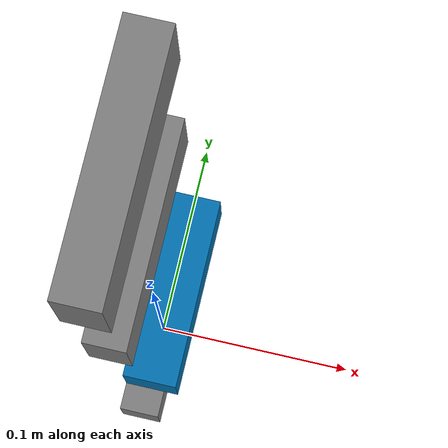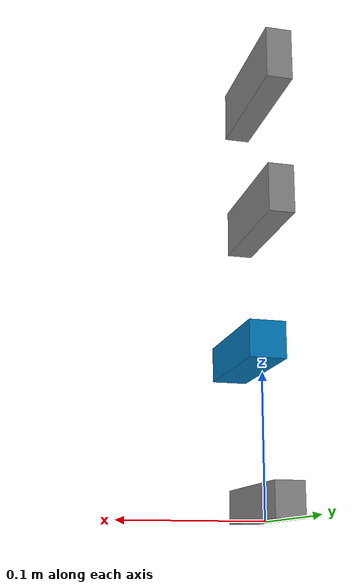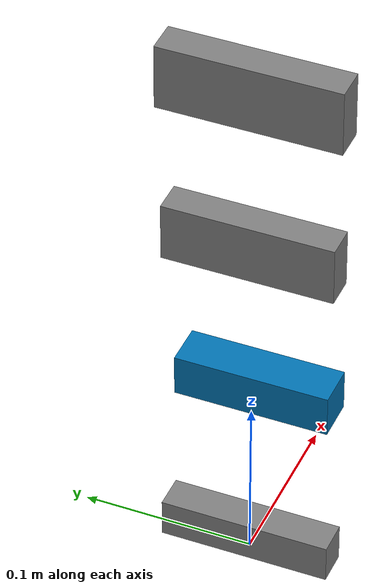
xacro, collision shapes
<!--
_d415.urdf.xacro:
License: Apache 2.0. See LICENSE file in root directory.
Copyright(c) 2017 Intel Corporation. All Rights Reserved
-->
<?xml version="1.0"?>
<robot name="realsense2_camera" xmlns:xacro="http://ros.org/wiki/xacro">
  <xacro:include filename="../urdf/_d415.urdf.xacro" />
  <xacro:include filename="../urdf/_d435.urdf.xacro" />
  <xacro:include filename="../urdf/_r410.urdf.xacro" />
  <xacro:include filename="../urdf/_r430.urdf.xacro" />

  <xacro:arg name="use_nominal_extrinsics" default="True" />
  <link name="base_link" />
  <xacro:sensor_d415 parent="base_link" name="d415">
    <origin xyz="0 0 0" rpy="0 0 0"/>
  </xacro:sensor_d415>
  <xacro:sensor_d435 parent="base_link" name="d435">
    <origin xyz="0 0 0.1" rpy="0 0 0"/>
  </xacro:sensor_d435>
  <xacro:sensor_r410 parent="base_link" name="r410">
    <origin xyz="0 0 0.2" rpy="0 0 0"/>
  </xacro:sensor_r410>
  <xacro:sensor_r430 parent="base_link" name="r430">
    <origin xyz="0 0 0.3" rpy="0 0 0"/>
  </xacro:sensor_r430>
</robot>

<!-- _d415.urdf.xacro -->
<robot name="sensor_d415" xmlns:xacro="http://ros.org/wiki/xacro">
  <!-- Includes -->
  <xacro:include filename="$(find realsense2_description)/urdf/_materials.urdf.xacro" />
  <xacro:include filename="$(find realsense2_description)/urdf/_usb_plug.urdf.xacro" />

  <xacro:macro name="sensor_d415" params="parent *origin  name:=camera  use_nominal_extrinsics:=false add_plug:=false use_mesh:=true">
    <xacro:property name="M_PI" value="3.1415926535897931" />

    <!-- The following values are approximate, and the camera node
     publishing TF values with actual calibrated camera extrinsic values -->
    <xacro:property name="d415_cam_depth_to_infra1_offset" value="0.0"/>
    <xacro:property name="d415_cam_depth_to_infra2_offset" value="-0.055"/>
    <xacro:property name="d415_cam_depth_to_color_offset" value="0.015"/>

    <!-- The following values model the aluminum peripherial case for the
  	d415 camera, with the camera joint represented by the actual
  	peripherial camera tripod mount -->
    <xacro:property name="d415_cam_width" value="0.099"/>
    <xacro:property name="d415_cam_height" value="0.023"/>
    <xacro:property name="d415_cam_depth" value="0.02005"/>
    <xacro:property name="d415_cam_mount_from_center_offset" value="0.00987"/>

    <!-- The following offset is relative the the physical d415 camera peripherial
  	camera tripod mount -->
    <xacro:property name="d415_cam_depth_px" value="${d415_cam_mount_from_center_offset}"/>
    <xacro:property name="d415_cam_depth_py" value="0.020"/>
    <xacro:property name="d415_cam_depth_pz" value="${d415_cam_height/2}"/>

    <!-- camera body, with origin at bottom screw mount -->
    <joint name="${name}_joint" type="fixed">
      <xacro:insert_block name="origin" />
      <parent link="${parent}"/>
      <child link="${name}_bottom_screw_frame" />
    </joint>

    <link name="${name}_bottom_screw_frame"/>

    <joint name="${name}_link_joint" type="fixed">
      <origin xyz="0 ${d415_cam_depth_py} ${d415_cam_depth_pz}" rpy="0 0 0"/>
      <parent link="${name}_bottom_screw_frame"/>
      <child link="${name}_link" />
    </joint>

    <link name="${name}_link">
      <visual>
        <xacro:if value="${use_mesh}">
          <origin xyz="${d415_cam_mount_from_center_offset} ${-d415_cam_depth_py} 0" rpy="${M_PI/2} 0 ${M_PI/2}"/>
          <geometry>
            <mesh filename="package://realsense2_description/meshes/d415.stl" />
          </geometry>
          <material name="aluminum"/>
        </xacro:if>
        <xacro:unless value="${use_mesh}">
          <origin xyz="0 ${-d415_cam_depth_py} 0" rpy="0 0 0"/>
          <geometry>
            <box size="${d415_cam_depth} ${d415_cam_width} ${d415_cam_height}"/>
          </geometry>
        </xacro:unless>
      </visual>
      <collision>
        <origin xyz="0 ${-d415_cam_depth_py} 0" rpy="0 0 0"/>
        <geometry>
        <box size="${d415_cam_depth} ${d415_cam_width} ${d415_cam_height}"/>
        </geometry>
      </collision>
      <inertial>
        <mass value="0.072" />
        <!-- The following are not reliable values, and should not be used for modeling -->
        <origin xyz="0 0 0" />
        <inertia ixx="0.003881243" ixy="0.0" ixz="0.0" iyy="0.000498940" iyz="0.0" izz="0.003879257" />
      </inertial>
    </link>

    <!-- Use the nominal extrinsics between camera frames if the calibrated extrinsics aren't being published. e.g. running the device in simulation  -->
    <xacro:if value="${use_nominal_extrinsics}">
      <!-- camera depth joints and links -->
      <joint name="${name}_depth_joint" type="fixed">
        <origin xyz="0 0 0" rpy="0 0 0"/>
        <parent link="${name}_link"/>
        <child link="${name}_depth_frame" />
      </joint>
      <link name="${name}_depth_frame"/>

      <joint name="${name}_depth_optical_joint" type="fixed">
        <origin xyz="0 0 0" rpy="${-M_PI/2} 0 ${-M_PI/2}" />
        <parent link="${name}_depth_frame" />
        <child link="${name}_depth_optical_frame" />
      </joint>
      <link name="${name}_depth_optical_frame"/>

      <!-- camera left IR joints and links -->
      <joint name="${name}_infra1_joint" type="fixed">
        <origin xyz="0 ${d415_cam_depth_to_infra1_offset} 0" rpy="0 0 0" />
        <parent link="${name}_link" />
        <child link="${name}_infra1_frame" />
      </joint>
      <link name="${name}_infra1_frame"/>

      <joint name="${name}_infra1_optical_joint" type="fixed">
        <origin xyz="0 0 0" rpy="${-M_PI/2} 0 ${-M_PI/2}" />
        <parent link="${name}_infra1_frame" />
        <child link="${name}_infra1_optical_frame" />
      </joint>
      <link name="${name}_infra1_optical_frame"/>

      <!-- camera right IR joints and links -->
      <joint name="${name}_infra2_joint" type="fixed">
        <origin xyz="0 ${d415_cam_depth_to_infra2_offset} 0" rpy="0 0 0" />
        <parent link="${name}_link" />
        <child link="${name}_infra2_frame" />
      </joint>
      <link name="${name}_infra2_frame"/>

      <joint name="${name}_infra2_optical_joint" type="fixed">
        <origin xyz="0 0 0" rpy="${-M_PI/2} 0 ${-M_PI/2}" />
        <parent link="${name}_infra2_frame" />
        <child link="${name}_infra2_optical_frame" />
      </joint>
      <link name="${name}_infra2_optical_frame"/>

      <!-- camera color joints and links -->
      <joint name="${name}_color_joint" type="fixed">
        <origin xyz="0 ${d415_cam_depth_to_color_offset} 0" rpy="0 0 0" />
        <parent link="${name}_link" />
        <child link="${name}_color_frame" />
      </joint>
      <link name="${name}_color_frame"/>

      <joint name="${name}_color_optical_joint" type="fixed">
        <origin xyz="0 0 0" rpy="${-M_PI/2} 0 ${-M_PI/2}" />
        <parent link="${name}_color_frame" />
        <child link="${name}_color_optical_frame" />
      </joint>
      <link name="${name}_color_optical_frame"/>
    </xacro:if>

    <xacro:if value="${add_plug}">
      <xacro:usb_plug parent="${name}_link" name="${name}_usb_plug">
        <origin xyz="${d415_cam_mount_from_center_offset - 0.01587} ${-d415_cam_depth_py - 0.0358} 0" rpy="0 0 0"/>
      </xacro:usb_plug>
    </xacro:if>
  </xacro:macro>
</robot>

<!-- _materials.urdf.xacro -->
<robot>
  <material name="aluminum">
    <color rgba="0.5 0.5 0.5 1"/>
  </material>
  <material name="plastic">
    <color rgba="0.1 0.1 0.1 1"/>
  </material>
</robot>

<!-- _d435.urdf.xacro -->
<robot name="sensor_d435" xmlns:xacro="http://ros.org/wiki/xacro">
  <!-- Includes -->
  <xacro:include filename="$(find realsense2_description)/urdf/_materials.urdf.xacro" />
  <xacro:include filename="$(find realsense2_description)/urdf/_usb_plug.urdf.xacro" />

  <xacro:macro name="sensor_d435" params="parent *origin name:=camera use_nominal_extrinsics:=false add_plug:=false use_mesh:=true">
    <xacro:property name="M_PI" value="3.1415926535897931" />

    <!-- The following values are approximate, and the camera node
     publishing TF values with actual calibrated camera extrinsic values -->
    <xacro:property name="d435_cam_depth_to_infra1_offset" value="0.0"/>
    <xacro:property name="d435_cam_depth_to_infra2_offset" value="-0.050"/>
    <xacro:property name="d435_cam_depth_to_color_offset" value="0.015"/>

    <!-- The following values model the aluminum peripherial case for the
  	D435 camera, with the camera joint represented by the actual
  	peripherial camera tripod mount -->
    <xacro:property name="d435_cam_width" value="0.090"/>
    <xacro:property name="d435_cam_height" value="0.025"/>
    <xacro:property name="d435_cam_depth" value="0.02505"/>
    <xacro:property name="d435_cam_mount_from_center_offset" value="0.0149"/>
    <!-- glass cover is 0.1 mm inwards from front aluminium plate -->
    <xacro:property name="d435_glass_to_front" value="0.1e-3"/>
    <!-- see datasheet Revision 007, Fig. 4-4 page 65 -->
    <xacro:property name="d435_zero_depth_to_glass" value="4.2e-3"/>
    <!-- convenience precomputation to avoid clutter-->
    <xacro:property name="d435_mesh_x_offset" value="${d435_cam_mount_from_center_offset-d435_glass_to_front-d435_zero_depth_to_glass}"/>

    <!-- The following offset is relative the the physical D435 camera peripherial
  	camera tripod mount -->
    <xacro:property name="d435_cam_depth_px" value="${d435_cam_mount_from_center_offset}"/>
    <xacro:property name="d435_cam_depth_py" value="0.0175"/>
    <xacro:property name="d435_cam_depth_pz" value="${d435_cam_height/2}"/>

    <!-- camera body, with origin at bottom screw mount -->
    <joint name="${name}_joint" type="fixed">
      <xacro:insert_block name="origin" />
      <parent link="${parent}"/>
      <child link="${name}_bottom_screw_frame" />
    </joint>
    <link name="${name}_bottom_screw_frame"/>

    <joint name="${name}_link_joint" type="fixed">
      <origin xyz="${d435_mesh_x_offset} ${d435_cam_depth_py} ${d435_cam_depth_pz}" rpy="0 0 0"/>
      <parent link="${name}_bottom_screw_frame"/>
      <child link="${name}_link" />
    </joint>

    <link name="${name}_link">
      <visual>
        <xacro:if value="${use_mesh}">
          <!-- the mesh origin is at front plate in between the two infrared camera axes -->
          <origin xyz="${d435_zero_depth_to_glass + d435_glass_to_front} ${-d435_cam_depth_py} 0" rpy="${M_PI/2} 0 ${M_PI/2}"/>
          <geometry>
            <mesh filename="package://realsense2_description/meshes/d435.dae" />
          </geometry>
        </xacro:if>
        <xacro:unless value="${use_mesh}">
          <origin xyz="0 ${-d435_cam_depth_py} 0" rpy="0 0 0"/>
          <geometry>
            <box size="${d435_cam_depth} ${d435_cam_width} ${d435_cam_height}"/>
          </geometry>
          <material name="aluminum"/>
        </xacro:unless>
      </visual>
      <collision>
        <origin xyz="0 ${-d435_cam_depth_py} 0" rpy="0 0 0"/>
        <geometry>
          <box size="${d435_cam_depth} ${d435_cam_width} ${d435_cam_height}"/>
        </geometry>
      </collision>
      <inertial>
        <!-- The following are not reliable values, and should not be used for modeling -->
        <mass value="0.072" />
        <origin xyz="0 0 0" />
        <inertia ixx="0.003881243" ixy="0.0" ixz="0.0" iyy="0.000498940" iyz="0.0" izz="0.003879257" />
      </inertial>
    </link>

    <!-- Use the nominal extrinsics between camera frames if the calibrated extrinsics aren't being published. e.g. running the device in simulation  -->
    <xacro:if value="${use_nominal_extrinsics}">
      <!-- camera depth joints and links -->
      <joint name="${name}_depth_joint" type="fixed">
        <origin xyz="0 0 0" rpy="0 0 0"/>
        <parent link="${name}_link"/>
        <child link="${name}_depth_frame" />
      </joint>
      <link name="${name}_depth_frame"/>

      <joint name="${name}_depth_optical_joint" type="fixed">
        <origin xyz="0 0 0" rpy="${-M_PI/2} 0 ${-M_PI/2}" />
        <parent link="${name}_depth_frame" />
        <child link="${name}_depth_optical_frame" />
      </joint>
      <link name="${name}_depth_optical_frame"/>

      <!-- camera left IR joints and links -->
      <joint name="${name}_infra1_joint" type="fixed">
        <origin xyz="0 ${d435_cam_depth_to_infra1_offset} 0" rpy="0 0 0" />
        <parent link="${name}_link" />
        <child link="${name}_infra1_frame" />
      </joint>
      <link name="${name}_infra1_frame"/>

      <joint name="${name}_infra1_optical_joint" type="fixed">
        <origin xyz="0 0 0" rpy="${-M_PI/2} 0 ${-M_PI/2}" />
        <parent link="${name}_infra1_frame" />
        <child link="${name}_infra1_optical_frame" />
      </joint>
      <link name="${name}_infra1_optical_frame"/>

      <!-- camera right IR joints and links -->
      <joint name="${name}_infra2_joint" type="fixed">
        <origin xyz="0 ${d435_cam_depth_to_infra2_offset} 0" rpy="0 0 0" />
        <parent link="${name}_link" />
        <child link="${name}_infra2_frame" />
      </joint>
      <link name="${name}_infra2_frame"/>

      <joint name="${name}_infra2_optical_joint" type="fixed">
        <origin xyz="0 0 0" rpy="${-M_PI/2} 0 ${-M_PI/2}" />
        <parent link="${name}_infra2_frame" />
        <child link="${name}_infra2_optical_frame" />
      </joint>
      <link name="${name}_infra2_optical_frame"/>

      <!-- camera color joints and links -->
      <joint name="${name}_color_joint" type="fixed">
        <origin xyz="0 ${d435_cam_depth_to_color_offset} 0" rpy="0 0 0" />
        <parent link="${name}_link" />
        <child link="${name}_color_frame" />
      </joint>
      <link name="${name}_color_frame"/>

      <joint name="${name}_color_optical_joint" type="fixed">
        <origin xyz="0 0 0" rpy="${-M_PI/2} 0 ${-M_PI/2}" />
        <parent link="${name}_color_frame" />
        <child link="${name}_color_optical_frame" />
      </joint>
      <link name="${name}_color_optical_frame"/>
    </xacro:if>

    <xacro:if value="${add_plug}">
      <xacro:usb_plug parent="${name}_link" name="${name}_usb_plug">
        <origin xyz="${d435_cam_mount_from_center_offset - 0.02095} ${-d435_cam_depth_py - 0.0353} 0" rpy="0 0 0"/>
      </xacro:usb_plug>
    </xacro:if>
  </xacro:macro>
</robot>

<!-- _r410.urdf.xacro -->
<robot name="sensor_r410" xmlns:xacro="http://ros.org/wiki/xacro">
  <!-- Includes -->
  <xacro:include filename="$(find realsense2_description)/urdf/_materials.urdf.xacro" />

  <xacro:macro name="sensor_r410" params="parent *origin  name:=camera  use_nominal_extrinsics:=false">
    <xacro:property name="M_PI" value="3.1415926535897931" />

    <!-- The following values are approximate, and the camera node
     publishing TF values with actual calibrated camera extrinsic values -->
    <xacro:property name="r410_cam_depth_to_infra1_offset" value="-0.0275"/>
    <xacro:property name="r410_cam_depth_to_infra2_offset" value="0.0275"/>

    <!-- The following values model the aluminum peripherial case for the
      R410 camera, with the camera joint represented by the actual
      peripherial camera tripod mount -->
    <xacro:property name="r410_cam_width" value="0.099"/>
    <xacro:property name="r410_cam_height" value="0.035"/>
    <xacro:property name="r410_cam_depth" value="0.0185"/>
    <xacro:property name="r410_cam_mount_from_center_offset" value=".0375"/>

    <!-- The following offset is relative the the physical R410 camera peripherial
      camera tripod mount -->
    <xacro:property name="r410_cam_depth_px" value="0.00"/>
    <xacro:property name="r410_cam_depth_py" value="-0.0425"/>
    <xacro:property name="r410_cam_depth_pz" value="0.026"/>

    <!-- camera body, with origin at bottom screw mount -->
    <joint name="${name}_joint" type="fixed">
      <xacro:insert_block name="origin" />
      <parent link="${parent}"/>
      <child link="${name}_link" />
    </joint>

    <link name="${name}_link">
      <visual>
      <origin xyz="0 ${-r410_cam_mount_from_center_offset} ${r410_cam_height/2}" rpy="${M_PI/2} 0 ${M_PI/2}"/>
        <geometry>
          <box size="${r410_cam_width} ${r410_cam_height} ${r410_cam_depth}"/>
        </geometry>
        <material name="aluminum"/>
      </visual>
      <collision>
        <origin xyz="0.0 0.0 ${r410_cam_height/2}" rpy="0 0 0"/>
        <geometry>
        <box size="${r410_cam_depth} ${r410_cam_width} ${r410_cam_height}"/>
        </geometry>
      </collision>
      <inertial>
        <!-- The following are not reliable values, and should not be used for modeling -->
        <mass value="0.564" />
        <origin xyz="0 0 0" />
        <inertia ixx="0.003881243" ixy="0.0" ixz="0.0" iyy="0.000498940" iyz="0.0" izz="0.003879257" />
      </inertial>
    </link>

    <!-- Use the nominal extrinsics between camera frames if the calibrated extrinsics aren't being published. e.g. running the device in simulation  -->
    <xacro:if value="${use_nominal_extrinsics}">
      <!-- camera depth joints and links -->
      <joint name="${name}_depth_joint" type="fixed">
        <origin xyz="${r410_cam_depth_px} ${r410_cam_depth_py} ${r410_cam_depth_pz}" rpy="0 0 0"/>
        <parent link="${name}_link"/>
        <child link="${name}_depth_frame" />
      </joint>
      <link name="${name}_depth_frame"/>

      <joint name="${name}_depth_optical_joint" type="fixed">
        <origin xyz="0 0 0" rpy="${-M_PI/2} 0 ${-M_PI/2}" />
        <parent link="${name}_depth_frame" />
        <child link="${name}_depth_optical_frame" />
      </joint>
      <link name="${name}_depth_optical_frame"/>

      <!-- camera left IR joints and links -->
      <joint name="${name}_infra1_joint" type="fixed">
        <origin xyz="0 ${r410_cam_depth_to_infra1_offset} 0" rpy="0 0 0" />
        <parent link="${name}_depth_frame" />
        <child link="${name}_infra1_frame" />
      </joint>
      <link name="${name}_infra1_frame"/>

      <joint name="${name}_infra1_optical_joint" type="fixed">
        <origin xyz="0 0 0" rpy="${-M_PI/2} 0 ${-M_PI/2}" />
        <parent link="${name}_infra1_frame" />
        <child link="${name}_infra1_optical_frame" />
      </joint>
      <link name="${name}_infra1_optical_frame"/>

      <!-- camera right IR joints and links -->
      <joint name="${name}_infra2_joint" type="fixed">
        <origin xyz="0 ${r410_cam_depth_to_infra2_offset} 0" rpy="0 0 0" />
        <parent link="${name}_depth_frame" />
        <child link="${name}_infra2_frame" />
      </joint>
      <link name="${name}_infra2_frame"/>

      <joint name="${name}_infra2_optical_joint" type="fixed">
        <origin xyz="0 0 0" rpy="${-M_PI/2} 0 ${-M_PI/2}" />
        <parent link="${name}_infra2_frame" />
        <child link="${name}_infra2_optical_frame" />
      </joint>
      <link name="${name}_infra2_optical_frame"/>
    </xacro:if>
  </xacro:macro>
</robot>

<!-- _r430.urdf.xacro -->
<robot name="sensor_r430" xmlns:xacro="http://ros.org/wiki/xacro">
  <!-- Includes -->
  <xacro:include filename="$(find realsense2_description)/urdf/_materials.urdf.xacro" />

  <xacro:macro name="sensor_r430" params="parent *origin name:=camera use_nominal_extrinsics:=false">
  <xacro:property name="M_PI" value="3.1415926535897931" />

  <!-- The following values are approximate, and the camera node
   publishing TF values with actual calibrated camera extrinsic values -->
  <xacro:property name="r430_cam_depth_to_infra1_offset" value="-0.025"/>
  <xacro:property name="r430_cam_depth_to_infra2_offset" value="0.025"/>
  <xacro:property name="r430_cam_depth_to_fisheye_offset" value="0.042"/>

  <!-- The following values model the aluminum peripherial case for the
    R430 camera, with the camera joint represented by the actual
    peripherial camera tripod mount -->
  <xacro:property name="r430_cam_width" value="0.105"/>
  <xacro:property name="r430_cam_height" value="0.039"/>
  <xacro:property name="r430_cam_depth" value="0.019"/>
  <xacro:property name="r430_cam_mount_from_center_offset" value=".0275"/>

  <!-- The following offset is relative the the physical R430 camera peripherial
    camera tripod mount -->
  <xacro:property name="r430_cam_depth_px" value="0.00"/>
  <xacro:property name="r430_cam_depth_py" value="-0.035"/>
  <xacro:property name="r430_cam_depth_pz" value="0.028"/>

    <!-- camera body, with origin at bottom screw mount -->
    <joint name="${name}_joint" type="fixed">
      <xacro:insert_block name="origin" />
      <parent link="${parent}"/>
      <child link="${name}_link" />
    </joint>

    <link name="${name}_link">
      <visual>
      <origin xyz="0 ${-r430_cam_mount_from_center_offset} ${r430_cam_height/2}" rpy="${M_PI/2} 0 ${M_PI/2}"/>
        <geometry>
          <box size="${r430_cam_width} ${r430_cam_height} ${r430_cam_depth}"/>
        </geometry>
        <material name="aluminum"/>
      </visual>
      <collision>
        <origin xyz="0.0 0.0 ${r430_cam_height/2}" rpy="0 0 0"/>
        <geometry>
        <box size="${r430_cam_depth} ${r430_cam_width} ${r430_cam_height}"/>
        </geometry>
      </collision>
      <inertial>
        <!-- The following are not reliable values, and should not be used for modeling -->
        <mass value="0.564" />
        <origin xyz="0 0 0" />
        <inertia ixx="0.003881243" ixy="0.0" ixz="0.0" iyy="0.000498940" iyz="0.0" izz="0.003879257" />
      </inertial>
    </link>

    <!-- Use the nominal extrinsics between camera frames if the calibrated extrinsics aren't being published. e.g. running the device in simulation  -->
    <xacro:if value="${use_nominal_extrinsics}">
      <!-- camera depth joints and links -->
      <joint name="${name}_depth_joint" type="fixed">
        <origin xyz="${r430_cam_depth_px} ${r430_cam_depth_py} ${r430_cam_depth_pz}" rpy="0 0 0"/>
        <parent link="${name}_link"/>
        <child link="${name}_depth_frame" />
      </joint>
      <link name="${name}_depth_frame"/>

      <joint name="${name}_depth_optical_joint" type="fixed">
        <origin xyz="0 0 0" rpy="${-M_PI/2} 0 ${-M_PI/2}" />
        <parent link="${name}_depth_frame" />
        <child link="${name}_depth_optical_frame" />
      </joint>
      <link name="${name}_depth_optical_frame"/>

      <!-- camera left IR joints and links -->
      <joint name="${name}_infra1_joint" type="fixed">
        <origin xyz="0 ${r430_cam_depth_to_infra1_offset} 0" rpy="0 0 0" />
        <parent link="${name}_depth_frame" />
        <child link="${name}_infra1_frame" />
      </joint>
      <link name="${name}_infra1_frame"/>

      <joint name="${name}_infra1_optical_joint" type="fixed">
        <origin xyz="0 0 0" rpy="${-M_PI/2} 0 ${-M_PI/2}" />
        <parent link="${name}_infra1_frame" />
        <child link="${name}_infra1_optical_frame" />
      </joint>
      <link name="${name}_infra1_optical_frame"/>

      <!-- camera right IR joints and links -->
      <joint name="${name}_infra2_joint" type="fixed">
        <origin xyz="0 ${r430_cam_depth_to_infra2_offset} 0" rpy="0 0 0" />
        <parent link="${name}_depth_frame" />
        <child link="${name}_infra2_frame" />
      </joint>
      <link name="${name}_infra2_frame"/>

      <joint name="${name}_infra2_optical_joint" type="fixed">
        <origin xyz="0 0 0" rpy="${-M_PI/2} 0 ${-M_PI/2}" />
        <parent link="${name}_infra2_frame" />
        <child link="${name}_infra2_optical_frame" />
      </joint>
      <link name="${name}_infra2_optical_frame"/>

      <!-- camera fisheye joints and links -->
      <joint name="${name}_fisheye_joint" type="fixed">
        <origin xyz="0 ${r430_cam_depth_to_fisheye_offset} 0" rpy="0 0 0" />
        <parent link="${name}_depth_frame" />
        <child link="${name}_fisheye_frame" />
      </joint>
      <link name="${name}_fisheye_frame"/>

      <joint name="${name}_fisheye_optical_joint" type="fixed">
        <origin xyz="0 0 0" rpy="${-M_PI/2} 0 ${-M_PI/2}" />
        <parent link="${name}_fisheye_frame" />
        <child link="${name}_fisheye_optical_frame" />
      </joint>
      <link name="${name}_fisheye_optical_frame"/>
    </xacro:if>
  </xacro:macro>
</robot>
